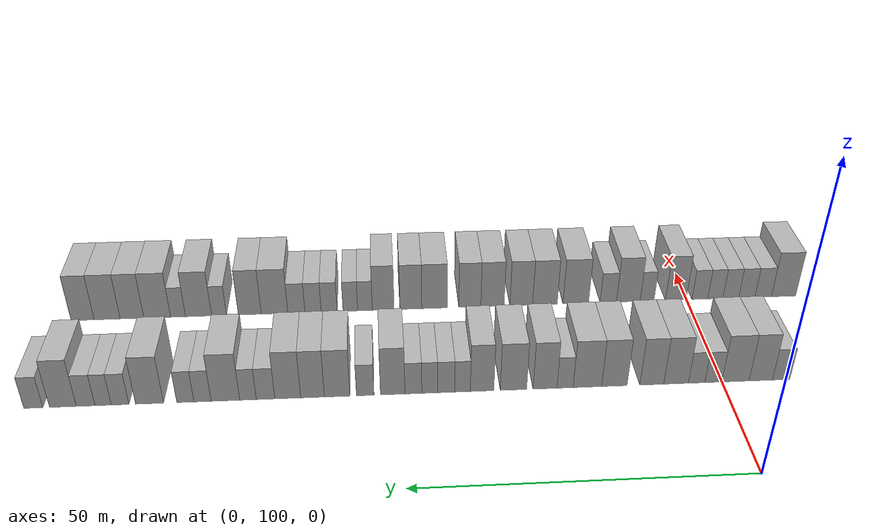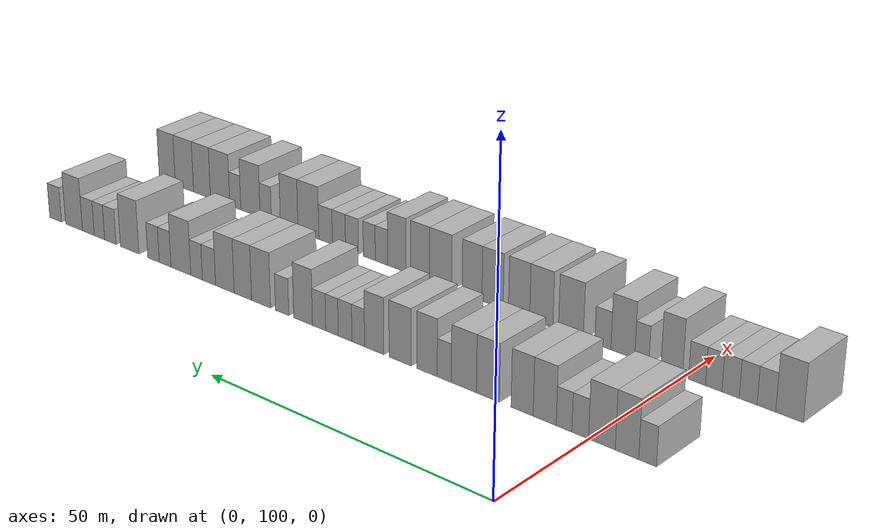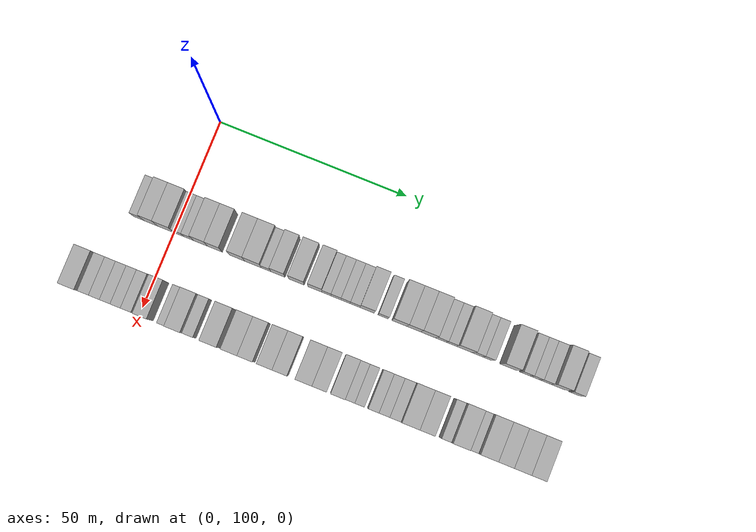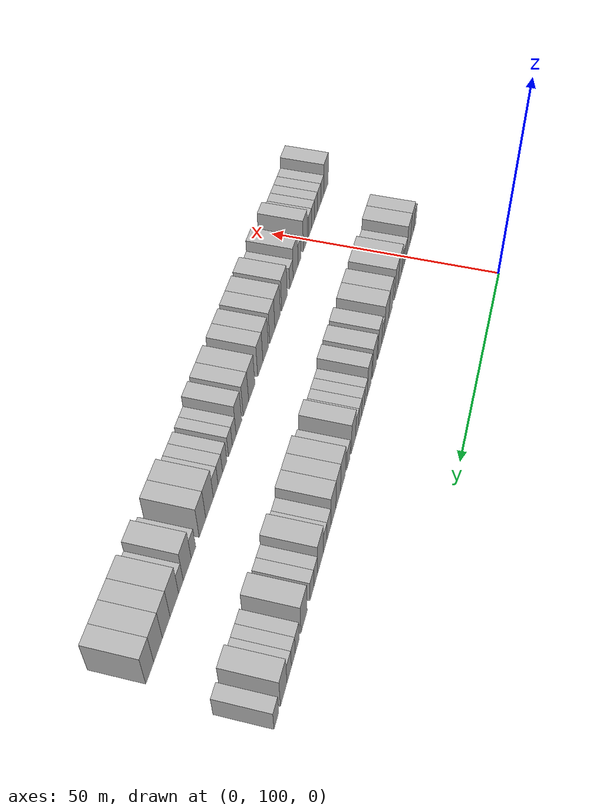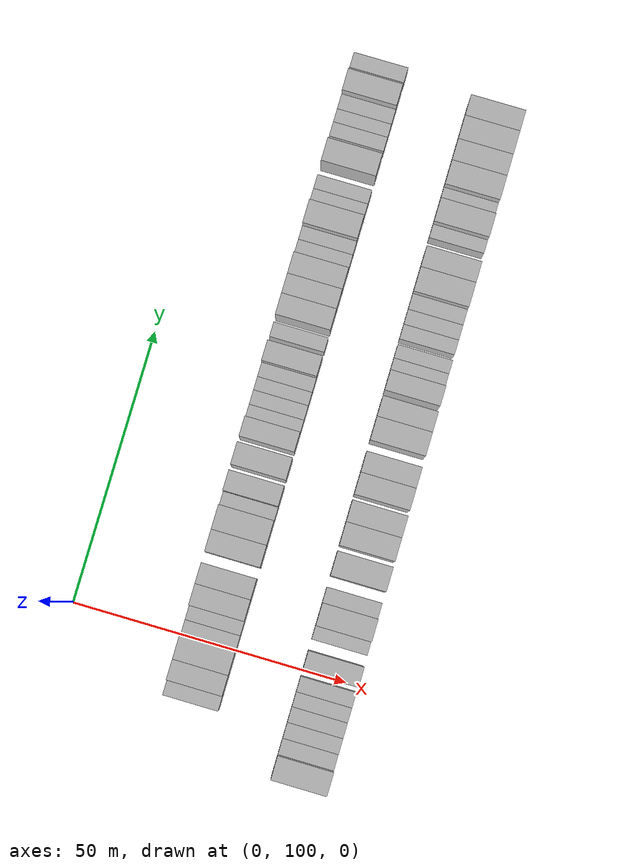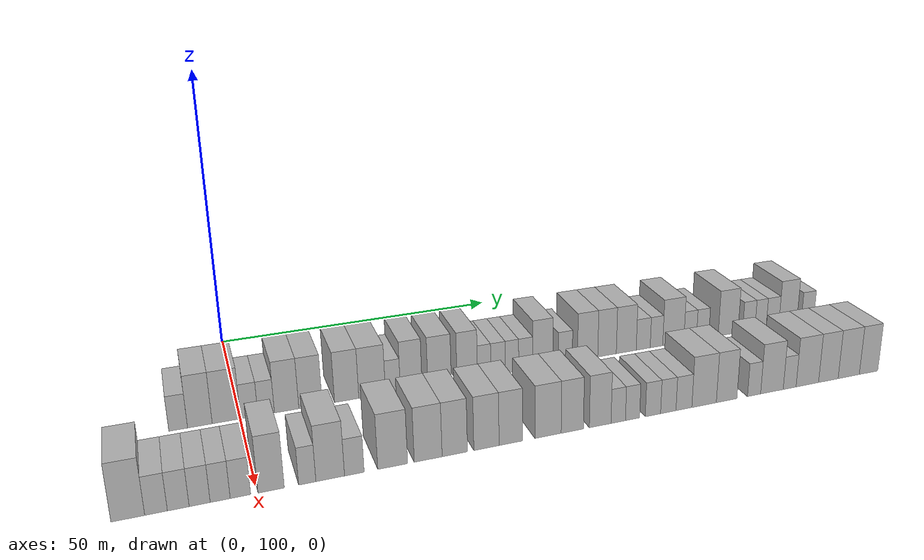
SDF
<sdf version="1.6">
 <world name="default">
  <model name="building_70">
   <static>1</static>
   <pose>25.0000 90.6528 0 0.000000 0.000000 0.000000</pose>
   <link name="link">
    <pose>0 0 3.00 0 0 0</pose>
    <collision name="collision"><geometry><box><size>10.0000 2.7820 6.0000</size></box></geometry></collision>
    <visual name="visual">
     <cast_shadows>0</cast_shadows>
     <geometry><box><size>10.0000 2.7820 6.0000</size></box></geometry>
     <material>
      <script>
       <uri>model://HANNAS_wall/materials/scripts</uri>
       <uri>model://HANNAS_wall/materials/textures</uri>
       <name>vrc/HANNAS_wall</name>
      </script>
     </material>
    </visual>
   </link>
  </model>
  <model name="building_71">
   <static>1</static>
   <pose>25.0000 93.8960 0 0.000000 0.000000 0.000000</pose>
   <link name="link">
    <pose>0 0 4.50 0 0 0</pose>
    <collision name="collision"><geometry><box><size>10.0000 3.7043 9.0000</size></box></geometry></collision>
    <visual name="visual">
     <cast_shadows>0</cast_shadows>
     <geometry><box><size>10.0000 3.7043 9.0000</size></box></geometry>
     <material>
      <script>
       <uri>model://HANNAS_wall/materials/scripts</uri>
       <uri>model://HANNAS_wall/materials/textures</uri>
       <name>vrc/HANNAS_wall</name>
      </script>
     </material>
    </visual>
   </link>
  </model>
  <model name="building_72">
   <static>1</static>
   <pose>25.0000 97.9015 0 0.000000 0.000000 0.000000</pose>
   <link name="link">
    <pose>0 0 4.50 0 0 0</pose>
    <collision name="collision"><geometry><box><size>10.0000 4.3069 9.0000</size></box></geometry></collision>
    <visual name="visual">
     <cast_shadows>0</cast_shadows>
     <geometry><box><size>10.0000 4.3069 9.0000</size></box></geometry>
     <material>
      <script>
       <uri>model://HANNAS_wall/materials/scripts</uri>
       <uri>model://HANNAS_wall/materials/textures</uri>
       <name>vrc/HANNAS_wall</name>
      </script>
     </material>
    </visual>
   </link>
  </model>
  <model name="building_73">
   <static>1</static>
   <pose>25.0000 101.4114 0 0.000000 0.000000 0.000000</pose>
   <link name="link">
    <pose>0 0 3.00 0 0 0</pose>
    <collision name="collision"><geometry><box><size>10.0000 2.7128 6.0000</size></box></geometry></collision>
    <visual name="visual">
     <cast_shadows>0</cast_shadows>
     <geometry><box><size>10.0000 2.7128 6.0000</size></box></geometry>
     <material>
      <script>
       <uri>model://HANNAS_wall/materials/scripts</uri>
       <uri>model://HANNAS_wall/materials/textures</uri>
       <name>vrc/HANNAS_wall</name>
      </script>
     </material>
    </visual>
   </link>
  </model>
  <model name="building_74">
   <static>1</static>
   <pose>25.0000 104.0581 0 0.000000 0.000000 0.000000</pose>
   <link name="link">
    <pose>0 0 3.00 0 0 0</pose>
    <collision name="collision"><geometry><box><size>10.0000 2.5806 6.0000</size></box></geometry></collision>
    <visual name="visual">
     <cast_shadows>0</cast_shadows>
     <geometry><box><size>10.0000 2.5806 6.0000</size></box></geometry>
     <material>
      <script>
       <uri>model://HANNAS_wall/materials/scripts</uri>
       <uri>model://HANNAS_wall/materials/textures</uri>
       <name>vrc/HANNAS_wall</name>
      </script>
     </material>
    </visual>
   </link>
  </model>
  <model name="building_75">
   <static>1</static>
   <pose>25.0000 107.2854 0 0.000000 0.000000 0.000000</pose>
   <link name="link">
    <pose>0 0 4.50 0 0 0</pose>
    <collision name="collision"><geometry><box><size>10.0000 3.8739 9.0000</size></box></geometry></collision>
    <visual name="visual">
     <cast_shadows>0</cast_shadows>
     <geometry><box><size>10.0000 3.8739 9.0000</size></box></geometry>
     <material>
      <script>
       <uri>model://HANNAS_wall/materials/scripts</uri>
       <uri>model://HANNAS_wall/materials/textures</uri>
       <name>vrc/HANNAS_wall</name>
      </script>
     </material>
    </visual>
   </link>
  </model>
  <model name="building_76">
   <static>1</static>
   <pose>25.0000 111.1015 0 0.000000 0.000000 0.000000</pose>
   <link name="link">
    <pose>0 0 4.50 0 0 0</pose>
    <collision name="collision"><geometry><box><size>10.0000 3.7584 9.0000</size></box></geometry></collision>
    <visual name="visual">
     <cast_shadows>0</cast_shadows>
     <geometry><box><size>10.0000 3.7584 9.0000</size></box></geometry>
     <material>
      <script>
       <uri>model://HANNAS_wall/materials/scripts</uri>
       <uri>model://HANNAS_wall/materials/textures</uri>
       <name>vrc/HANNAS_wall</name>
      </script>
     </material>
    </visual>
   </link>
  </model>
  <model name="building_77">
   <static>1</static>
   <pose>25.0000 116.9797 0 0.000000 0.000000 0.000000</pose>
   <link name="link">
    <pose>0 0 4.50 0 0 0</pose>
    <collision name="collision"><geometry><box><size>10.0000 3.9978 9.0000</size></box></geometry></collision>
    <visual name="visual">
     <cast_shadows>0</cast_shadows>
     <geometry><box><size>10.0000 3.9978 9.0000</size></box></geometry>
     <material>
      <script>
       <uri>model://HANNAS_wall/materials/scripts</uri>
       <uri>model://HANNAS_wall/materials/textures</uri>
       <name>vrc/HANNAS_wall</name>
      </script>
     </material>
    </visual>
   </link>
  </model>
  <model name="building_78">
   <static>1</static>
   <pose>25.0000 121.2037 0 0.000000 0.000000 0.000000</pose>
   <link name="link">
    <pose>0 0 4.50 0 0 0</pose>
    <collision name="collision"><geometry><box><size>10.0000 4.4503 9.0000</size></box></geometry></collision>
    <visual name="visual">
     <cast_shadows>0</cast_shadows>
     <geometry><box><size>10.0000 4.4503 9.0000</size></box></geometry>
     <material>
      <script>
       <uri>model://HANNAS_wall/materials/scripts</uri>
       <uri>model://HANNAS_wall/materials/textures</uri>
       <name>vrc/HANNAS_wall</name>
      </script>
     </material>
    </visual>
   </link>
  </model>
  <model name="building_79">
   <static>1</static>
   <pose>25.0000 124.6914 0 0.000000 0.000000 0.000000</pose>
   <link name="link">
    <pose>0 0 3.00 0 0 0</pose>
    <collision name="collision"><geometry><box><size>10.0000 2.5252 6.0000</size></box></geometry></collision>
    <visual name="visual">
     <cast_shadows>0</cast_shadows>
     <geometry><box><size>10.0000 2.5252 6.0000</size></box></geometry>
     <material>
      <script>
       <uri>model://HANNAS_wall/materials/scripts</uri>
       <uri>model://HANNAS_wall/materials/textures</uri>
       <name>vrc/HANNAS_wall</name>
      </script>
     </material>
    </visual>
   </link>
  </model>
  <model name="building_80">
   <static>1</static>
   <pose>25.0000 127.8165 0 0.000000 0.000000 0.000000</pose>
   <link name="link">
    <pose>0 0 4.50 0 0 0</pose>
    <collision name="collision"><geometry><box><size>10.0000 3.7249 9.0000</size></box></geometry></collision>
    <visual name="visual">
     <cast_shadows>0</cast_shadows>
     <geometry><box><size>10.0000 3.7249 9.0000</size></box></geometry>
     <material>
      <script>
       <uri>model://HANNAS_wall/materials/scripts</uri>
       <uri>model://HANNAS_wall/materials/textures</uri>
       <name>vrc/HANNAS_wall</name>
      </script>
     </material>
    </visual>
   </link>
  </model>
  <model name="building_81">
   <static>1</static>
   <pose>25.0000 132.7266 0 0.000000 0.000000 0.000000</pose>
   <link name="link">
    <pose>0 0 4.50 0 0 0</pose>
    <collision name="collision"><geometry><box><size>10.0000 4.0953 9.0000</size></box></geometry></collision>
    <visual name="visual">
     <cast_shadows>0</cast_shadows>
     <geometry><box><size>10.0000 4.0953 9.0000</size></box></geometry>
     <material>
      <script>
       <uri>model://HANNAS_wall/materials/scripts</uri>
       <uri>model://HANNAS_wall/materials/textures</uri>
       <name>vrc/HANNAS_wall</name>
      </script>
     </material>
    </visual>
   </link>
  </model>
  <model name="building_82">
   <static>1</static>
   <pose>25.0000 137.5954 0 0.000000 0.000000 0.000000</pose>
   <link name="link">
    <pose>0 0 4.50 0 0 0</pose>
    <collision name="collision"><geometry><box><size>10.0000 3.6423 9.0000</size></box></geometry></collision>
    <visual name="visual">
     <cast_shadows>0</cast_shadows>
     <geometry><box><size>10.0000 3.6423 9.0000</size></box></geometry>
     <material>
      <script>
       <uri>model://HANNAS_wall/materials/scripts</uri>
       <uri>model://HANNAS_wall/materials/textures</uri>
       <name>vrc/HANNAS_wall</name>
      </script>
     </material>
    </visual>
   </link>
  </model>
  <model name="building_83">
   <static>1</static>
   <pose>25.0000 140.6196 0 0.000000 0.000000 0.000000</pose>
   <link name="link">
    <pose>0 0 3.00 0 0 0</pose>
    <collision name="collision"><geometry><box><size>10.0000 2.4060 6.0000</size></box></geometry></collision>
    <visual name="visual">
     <cast_shadows>0</cast_shadows>
     <geometry><box><size>10.0000 2.4060 6.0000</size></box></geometry>
     <material>
      <script>
       <uri>model://HANNAS_wall/materials/scripts</uri>
       <uri>model://HANNAS_wall/materials/textures</uri>
       <name>vrc/HANNAS_wall</name>
      </script>
     </material>
    </visual>
   </link>
  </model>
  <model name="building_84">
   <static>1</static>
   <pose>25.0000 143.1422 0 0.000000 0.000000 0.000000</pose>
   <link name="link">
    <pose>0 0 3.00 0 0 0</pose>
    <collision name="collision"><geometry><box><size>10.0000 2.6392 6.0000</size></box></geometry></collision>
    <visual name="visual">
     <cast_shadows>0</cast_shadows>
     <geometry><box><size>10.0000 2.6392 6.0000</size></box></geometry>
     <material>
      <script>
       <uri>model://HANNAS_wall/materials/scripts</uri>
       <uri>model://HANNAS_wall/materials/textures</uri>
       <name>vrc/HANNAS_wall</name>
      </script>
     </material>
    </visual>
   </link>
  </model>
  <model name="building_85">
   <static>1</static>
   <pose>25.0000 145.6800 0 0.000000 0.000000 0.000000</pose>
   <link name="link">
    <pose>0 0 3.00 0 0 0</pose>
    <collision name="collision"><geometry><box><size>10.0000 2.4364 6.0000</size></box></geometry></collision>
    <visual name="visual">
     <cast_shadows>0</cast_shadows>
     <geometry><box><size>10.0000 2.4364 6.0000</size></box></geometry>
     <material>
      <script>
       <uri>model://HANNAS_wall/materials/scripts</uri>
       <uri>model://HANNAS_wall/materials/textures</uri>
       <name>vrc/HANNAS_wall</name>
      </script>
     </material>
    </visual>
   </link>
  </model>
  <model name="building_86">
   <static>1</static>
   <pose>25.0000 148.2035 0 0.000000 0.000000 0.000000</pose>
   <link name="link">
    <pose>0 0 3.00 0 0 0</pose>
    <collision name="collision"><geometry><box><size>10.0000 2.6107 6.0000</size></box></geometry></collision>
    <visual name="visual">
     <cast_shadows>0</cast_shadows>
     <geometry><box><size>10.0000 2.6107 6.0000</size></box></geometry>
     <material>
      <script>
       <uri>model://HANNAS_wall/materials/scripts</uri>
       <uri>model://HANNAS_wall/materials/textures</uri>
       <name>vrc/HANNAS_wall</name>
      </script>
     </material>
    </visual>
   </link>
  </model>
  <model name="building_87">
   <static>1</static>
   <pose>25.0000 151.3780 0 0.000000 0.000000 0.000000</pose>
   <link name="link">
    <pose>0 0 4.50 0 0 0</pose>
    <collision name="collision"><geometry><box><size>10.0000 3.7382 9.0000</size></box></geometry></collision>
    <visual name="visual">
     <cast_shadows>0</cast_shadows>
     <geometry><box><size>10.0000 3.7382 9.0000</size></box></geometry>
     <material>
      <script>
       <uri>model://HANNAS_wall/materials/scripts</uri>
       <uri>model://HANNAS_wall/materials/textures</uri>
       <name>vrc/HANNAS_wall</name>
      </script>
     </material>
    </visual>
   </link>
  </model>
  <model name="building_88">
   <static>1</static>
   <pose>25.0000 155.5901 0 0.000000 0.000000 0.000000</pose>
   <link name="link">
    <pose>0 0 3.00 0 0 0</pose>
    <collision name="collision"><geometry><box><size>10.0000 2.6861 6.0000</size></box></geometry></collision>
    <visual name="visual">
     <cast_shadows>0</cast_shadows>
     <geometry><box><size>10.0000 2.6861 6.0000</size></box></geometry>
     <material>
      <script>
       <uri>model://HANNAS_wall/materials/scripts</uri>
       <uri>model://HANNAS_wall/materials/textures</uri>
       <name>vrc/HANNAS_wall</name>
      </script>
     </material>
    </visual>
   </link>
  </model>
  <model name="building_89">
   <static>1</static>
   <pose>25.0000 159.8855 0 0.000000 0.000000 0.000000</pose>
   <link name="link">
    <pose>0 0 4.50 0 0 0</pose>
    <collision name="collision"><geometry><box><size>10.0000 3.9046 9.0000</size></box></geometry></collision>
    <visual name="visual">
     <cast_shadows>0</cast_shadows>
     <geometry><box><size>10.0000 3.9046 9.0000</size></box></geometry>
     <material>
      <script>
       <uri>model://HANNAS_wall/materials/scripts</uri>
       <uri>model://HANNAS_wall/materials/textures</uri>
       <name>vrc/HANNAS_wall</name>
      </script>
     </material>
    </visual>
   </link>
  </model>
  <model name="building_90">
   <static>1</static>
   <pose>25.0000 163.6475 0 0.000000 0.000000 0.000000</pose>
   <link name="link">
    <pose>0 0 4.50 0 0 0</pose>
    <collision name="collision"><geometry><box><size>10.0000 3.6193 9.0000</size></box></geometry></collision>
    <visual name="visual">
     <cast_shadows>0</cast_shadows>
     <geometry><box><size>10.0000 3.6193 9.0000</size></box></geometry>
     <material>
      <script>
       <uri>model://HANNAS_wall/materials/scripts</uri>
       <uri>model://HANNAS_wall/materials/textures</uri>
       <name>vrc/HANNAS_wall</name>
      </script>
     </material>
    </visual>
   </link>
  </model>
  <model name="building_91">
   <static>1</static>
   <pose>25.0000 167.4283 0 0.000000 0.000000 0.000000</pose>
   <link name="link">
    <pose>0 0 4.50 0 0 0</pose>
    <collision name="collision"><geometry><box><size>10.0000 3.9423 9.0000</size></box></geometry></collision>
    <visual name="visual">
     <cast_shadows>0</cast_shadows>
     <geometry><box><size>10.0000 3.9423 9.0000</size></box></geometry>
     <material>
      <script>
       <uri>model://HANNAS_wall/materials/scripts</uri>
       <uri>model://HANNAS_wall/materials/textures</uri>
       <name>vrc/HANNAS_wall</name>
      </script>
     </material>
    </visual>
   </link>
  </model>
  <model name="building_92">
   <static>1</static>
   <pose>25.0000 170.8053 0 0.000000 0.000000 0.000000</pose>
   <link name="link">
    <pose>0 0 3.00 0 0 0</pose>
    <collision name="collision"><geometry><box><size>10.0000 2.8118 6.0000</size></box></geometry></collision>
    <visual name="visual">
     <cast_shadows>0</cast_shadows>
     <geometry><box><size>10.0000 2.8118 6.0000</size></box></geometry>
     <material>
      <script>
       <uri>model://HANNAS_wall/materials/scripts</uri>
       <uri>model://HANNAS_wall/materials/textures</uri>
       <name>vrc/HANNAS_wall</name>
      </script>
     </material>
    </visual>
   </link>
  </model>
  <model name="building_93">
   <static>1</static>
   <pose>25.0000 173.4721 0 0.000000 0.000000 0.000000</pose>
   <link name="link">
    <pose>0 0 3.00 0 0 0</pose>
    <collision name="collision"><geometry><box><size>10.0000 2.5217 6.0000</size></box></geometry></collision>
    <visual name="visual">
     <cast_shadows>0</cast_shadows>
     <geometry><box><size>10.0000 2.5217 6.0000</size></box></geometry>
     <material>
      <script>
       <uri>model://HANNAS_wall/materials/scripts</uri>
       <uri>model://HANNAS_wall/materials/textures</uri>
       <name>vrc/HANNAS_wall</name>
      </script>
     </material>
    </visual>
   </link>
  </model>
  <model name="building_94">
   <static>1</static>
   <pose>25.0000 176.8961 0 0.000000 0.000000 0.000000</pose>
   <link name="link">
    <pose>0 0 4.50 0 0 0</pose>
    <collision name="collision"><geometry><box><size>10.0000 4.3265 9.0000</size></box></geometry></collision>
    <visual name="visual">
     <cast_shadows>0</cast_shadows>
     <geometry><box><size>10.0000 4.3265 9.0000</size></box></geometry>
     <material>
      <script>
       <uri>model://HANNAS_wall/materials/scripts</uri>
       <uri>model://HANNAS_wall/materials/textures</uri>
       <name>vrc/HANNAS_wall</name>
      </script>
     </material>
    </visual>
   </link>
  </model>
  <model name="building_95">
   <static>1</static>
   <pose>25.0000 180.3602 0 0.000000 0.000000 0.000000</pose>
   <link name="link">
    <pose>0 0 3.00 0 0 0</pose>
    <collision name="collision"><geometry><box><size>10.0000 2.6016 6.0000</size></box></geometry></collision>
    <visual name="visual">
     <cast_shadows>0</cast_shadows>
     <geometry><box><size>10.0000 2.6016 6.0000</size></box></geometry>
     <material>
      <script>
       <uri>model://HANNAS_wall/materials/scripts</uri>
       <uri>model://HANNAS_wall/materials/textures</uri>
       <name>vrc/HANNAS_wall</name>
      </script>
     </material>
    </visual>
   </link>
  </model>
  <model name="building_96">
   <static>1</static>
   <pose>25.0000 182.9474 0 0.000000 0.000000 0.000000</pose>
   <link name="link">
    <pose>0 0 3.00 0 0 0</pose>
    <collision name="collision"><geometry><box><size>10.0000 2.5729 6.0000</size></box></geometry></collision>
    <visual name="visual">
     <cast_shadows>0</cast_shadows>
     <geometry><box><size>10.0000 2.5729 6.0000</size></box></geometry>
     <material>
      <script>
       <uri>model://HANNAS_wall/materials/scripts</uri>
       <uri>model://HANNAS_wall/materials/textures</uri>
       <name>vrc/HANNAS_wall</name>
      </script>
     </material>
    </visual>
   </link>
  </model>
  <model name="building_97">
   <static>1</static>
   <pose>25.0000 188.3378 0 0.000000 0.000000 0.000000</pose>
   <link name="link">
    <pose>0 0 4.50 0 0 0</pose>
    <collision name="collision"><geometry><box><size>10.0000 4.2080 9.0000</size></box></geometry></collision>
    <visual name="visual">
     <cast_shadows>0</cast_shadows>
     <geometry><box><size>10.0000 4.2080 9.0000</size></box></geometry>
     <material>
      <script>
       <uri>model://HANNAS_wall/materials/scripts</uri>
       <uri>model://HANNAS_wall/materials/textures</uri>
       <name>vrc/HANNAS_wall</name>
      </script>
     </material>
    </visual>
   </link>
  </model>
  <model name="building_98">
   <static>1</static>
   <pose>25.0000 192.7687 0 0.000000 0.000000 0.000000</pose>
   <link name="link">
    <pose>0 0 3.00 0 0 0</pose>
    <collision name="collision"><geometry><box><size>10.0000 2.6538 6.0000</size></box></geometry></collision>
    <visual name="visual">
     <cast_shadows>0</cast_shadows>
     <geometry><box><size>10.0000 2.6538 6.0000</size></box></geometry>
     <material>
      <script>
       <uri>model://HANNAS_wall/materials/scripts</uri>
       <uri>model://HANNAS_wall/materials/textures</uri>
       <name>vrc/HANNAS_wall</name>
      </script>
     </material>
    </visual>
   </link>
  </model>
  <model name="building_99">
   <static>1</static>
   <pose>25.0000 195.3178 0 0.000000 0.000000 0.000000</pose>
   <link name="link">
    <pose>0 0 3.00 0 0 0</pose>
    <collision name="collision"><geometry><box><size>10.0000 2.4444 6.0000</size></box></geometry></collision>
    <visual name="visual">
     <cast_shadows>0</cast_shadows>
     <geometry><box><size>10.0000 2.4444 6.0000</size></box></geometry>
     <material>
      <script>
       <uri>model://HANNAS_wall/materials/scripts</uri>
       <uri>model://HANNAS_wall/materials/textures</uri>
       <name>vrc/HANNAS_wall</name>
      </script>
     </material>
    </visual>
   </link>
  </model>
  <model name="building_100">
   <static>1</static>
   <pose>25.0000 197.9291 0 0.000000 0.000000 0.000000</pose>
   <link name="link">
    <pose>0 0 3.00 0 0 0</pose>
    <collision name="collision"><geometry><box><size>10.0000 2.7781 6.0000</size></box></geometry></collision>
    <visual name="visual">
     <cast_shadows>0</cast_shadows>
     <geometry><box><size>10.0000 2.7781 6.0000</size></box></geometry>
     <material>
      <script>
       <uri>model://HANNAS_wall/materials/scripts</uri>
       <uri>model://HANNAS_wall/materials/textures</uri>
       <name>vrc/HANNAS_wall</name>
      </script>
     </material>
    </visual>
   </link>
  </model>
  <model name="building_101">
   <static>1</static>
   <pose>25.0000 201.3187 0 0.000000 0.000000 0.000000</pose>
   <link name="link">
    <pose>0 0 4.50 0 0 0</pose>
    <collision name="collision"><geometry><box><size>10.0000 4.0010 9.0000</size></box></geometry></collision>
    <visual name="visual">
     <cast_shadows>0</cast_shadows>
     <geometry><box><size>10.0000 4.0010 9.0000</size></box></geometry>
     <material>
      <script>
       <uri>model://HANNAS_wall/materials/scripts</uri>
       <uri>model://HANNAS_wall/materials/textures</uri>
       <name>vrc/HANNAS_wall</name>
      </script>
     </material>
    </visual>
   </link>
  </model>
  <model name="building_102">
   <static>1</static>
   <pose>25.0000 205.7328 0 0.000000 0.000000 0.000000</pose>
   <link name="link">
    <pose>0 0 3.00 0 0 0</pose>
    <collision name="collision"><geometry><box><size>10.0000 2.8272 6.0000</size></box></geometry></collision>
    <visual name="visual">
     <cast_shadows>0</cast_shadows>
     <geometry><box><size>10.0000 2.8272 6.0000</size></box></geometry>
     <material>
      <script>
       <uri>model://HANNAS_wall/materials/scripts</uri>
       <uri>model://HANNAS_wall/materials/textures</uri>
       <name>vrc/HANNAS_wall</name>
      </script>
     </material>
    </visual>
   </link>
  </model>
  <model name="building_164">
   <static>1</static>
   <pose>47.0000 82.9723 0 0.000000 0.000000 0.000000</pose>
   <link name="link">
    <pose>0 0 4.50 0 0 0</pose>
    <collision name="collision"><geometry><box><size>10.0000 4.2848 9.0000</size></box></geometry></collision>
    <visual name="visual">
     <cast_shadows>0</cast_shadows>
     <geometry><box><size>10.0000 4.2848 9.0000</size></box></geometry>
     <material>
      <script>
       <uri>model://HANNAS_wall/materials/scripts</uri>
       <uri>model://HANNAS_wall/materials/textures</uri>
       <name>vrc/HANNAS_wall</name>
      </script>
     </material>
    </visual>
   </link>
  </model>
  <model name="building_165">
   <static>1</static>
   <pose>47.0000 86.5714 0 0.000000 0.000000 0.000000</pose>
   <link name="link">
    <pose>0 0 3.00 0 0 0</pose>
    <collision name="collision"><geometry><box><size>10.0000 2.9133 6.0000</size></box></geometry></collision>
    <visual name="visual">
     <cast_shadows>0</cast_shadows>
     <geometry><box><size>10.0000 2.9133 6.0000</size></box></geometry>
     <material>
      <script>
       <uri>model://HANNAS_wall/materials/scripts</uri>
       <uri>model://HANNAS_wall/materials/textures</uri>
       <name>vrc/HANNAS_wall</name>
      </script>
     </material>
    </visual>
   </link>
  </model>
  <model name="building_166">
   <static>1</static>
   <pose>47.0000 89.4479 0 0.000000 0.000000 0.000000</pose>
   <link name="link">
    <pose>0 0 3.00 0 0 0</pose>
    <collision name="collision"><geometry><box><size>10.0000 2.8397 6.0000</size></box></geometry></collision>
    <visual name="visual">
     <cast_shadows>0</cast_shadows>
     <geometry><box><size>10.0000 2.8397 6.0000</size></box></geometry>
     <material>
      <script>
       <uri>model://HANNAS_wall/materials/scripts</uri>
       <uri>model://HANNAS_wall/materials/textures</uri>
       <name>vrc/HANNAS_wall</name>
      </script>
     </material>
    </visual>
   </link>
  </model>
  <model name="building_167">
   <static>1</static>
   <pose>47.0000 92.2582 0 0.000000 0.000000 0.000000</pose>
   <link name="link">
    <pose>0 0 3.00 0 0 0</pose>
    <collision name="collision"><geometry><box><size>10.0000 2.7810 6.0000</size></box></geometry></collision>
    <visual name="visual">
     <cast_shadows>0</cast_shadows>
     <geometry><box><size>10.0000 2.7810 6.0000</size></box></geometry>
     <material>
      <script>
       <uri>model://HANNAS_wall/materials/scripts</uri>
       <uri>model://HANNAS_wall/materials/textures</uri>
       <name>vrc/HANNAS_wall</name>
      </script>
     </material>
    </visual>
   </link>
  </model>
  <model name="building_168">
   <static>1</static>
   <pose>47.0000 94.9837 0 0.000000 0.000000 0.000000</pose>
   <link name="link">
    <pose>0 0 3.00 0 0 0</pose>
    <collision name="collision"><geometry><box><size>10.0000 2.6699 6.0000</size></box></geometry></collision>
    <visual name="visual">
     <cast_shadows>0</cast_shadows>
     <geometry><box><size>10.0000 2.6699 6.0000</size></box></geometry>
     <material>
      <script>
       <uri>model://HANNAS_wall/materials/scripts</uri>
       <uri>model://HANNAS_wall/materials/textures</uri>
       <name>vrc/HANNAS_wall</name>
      </script>
     </material>
    </visual>
   </link>
  </model>
  <model name="building_169">
   <static>1</static>
   <pose>47.0000 97.7050 0 0.000000 0.000000 0.000000</pose>
   <link name="link">
    <pose>0 0 3.00 0 0 0</pose>
    <collision name="collision"><geometry><box><size>10.0000 2.7727 6.0000</size></box></geometry></collision>
    <visual name="visual">
     <cast_shadows>0</cast_shadows>
     <geometry><box><size>10.0000 2.7727 6.0000</size></box></geometry>
     <material>
      <script>
       <uri>model://HANNAS_wall/materials/scripts</uri>
       <uri>model://HANNAS_wall/materials/textures</uri>
       <name>vrc/HANNAS_wall</name>
      </script>
     </material>
    </visual>
   </link>
  </model>
  <model name="building_170">
   <static>1</static>
   <pose>47.0000 101.9086 0 0.000000 0.000000 0.000000</pose>
   <link name="link">
    <pose>0 0 4.50 0 0 0</pose>
    <collision name="collision"><geometry><box><size>10.0000 3.6345 9.0000</size></box></geometry></collision>
    <visual name="visual">
     <cast_shadows>0</cast_shadows>
     <geometry><box><size>10.0000 3.6345 9.0000</size></box></geometry>
     <material>
      <script>
       <uri>model://HANNAS_wall/materials/scripts</uri>
       <uri>model://HANNAS_wall/materials/textures</uri>
       <name>vrc/HANNAS_wall</name>
      </script>
     </material>
    </visual>
   </link>
  </model>
  <model name="building_171">
   <static>1</static>
   <pose>47.0000 106.9428 0 0.000000 0.000000 0.000000</pose>
   <link name="link">
    <pose>0 0 3.00 0 0 0</pose>
    <collision name="collision"><geometry><box><size>10.0000 2.4339 6.0000</size></box></geometry></collision>
    <visual name="visual">
     <cast_shadows>0</cast_shadows>
     <geometry><box><size>10.0000 2.4339 6.0000</size></box></geometry>
     <material>
      <script>
       <uri>model://HANNAS_wall/materials/scripts</uri>
       <uri>model://HANNAS_wall/materials/textures</uri>
       <name>vrc/HANNAS_wall</name>
      </script>
     </material>
    </visual>
   </link>
  </model>
  <model name="building_172">
   <static>1</static>
   <pose>47.0000 110.2116 0 0.000000 0.000000 0.000000</pose>
   <link name="link">
    <pose>0 0 4.50 0 0 0</pose>
    <collision name="collision"><geometry><box><size>10.0000 4.1038 9.0000</size></box></geometry></collision>
    <visual name="visual">
     <cast_shadows>0</cast_shadows>
     <geometry><box><size>10.0000 4.1038 9.0000</size></box></geometry>
     <material>
      <script>
       <uri>model://HANNAS_wall/materials/scripts</uri>
       <uri>model://HANNAS_wall/materials/textures</uri>
       <name>vrc/HANNAS_wall</name>
      </script>
     </material>
    </visual>
   </link>
  </model>
  <model name="building_173">
   <static>1</static>
   <pose>47.0000 113.6878 0 0.000000 0.000000 0.000000</pose>
   <link name="link">
    <pose>0 0 3.00 0 0 0</pose>
    <collision name="collision"><geometry><box><size>10.0000 2.8486 6.0000</size></box></geometry></collision>
    <visual name="visual">
     <cast_shadows>0</cast_shadows>
     <geometry><box><size>10.0000 2.8486 6.0000</size></box></geometry>
     <material>
      <script>
       <uri>model://HANNAS_wall/materials/scripts</uri>
       <uri>model://HANNAS_wall/materials/textures</uri>
       <name>vrc/HANNAS_wall</name>
      </script>
     </material>
    </visual>
   </link>
  </model>
  <model name="building_174">
   <static>1</static>
   <pose>47.0000 119.3352 0 0.000000 0.000000 0.000000</pose>
   <link name="link">
    <pose>0 0 4.50 0 0 0</pose>
    <collision name="collision"><geometry><box><size>10.0000 4.4462 9.0000</size></box></geometry></collision>
    <visual name="visual">
     <cast_shadows>0</cast_shadows>
     <geometry><box><size>10.0000 4.4462 9.0000</size></box></geometry>
     <material>
      <script>
       <uri>model://HANNAS_wall/materials/scripts</uri>
       <uri>model://HANNAS_wall/materials/textures</uri>
       <name>vrc/HANNAS_wall</name>
      </script>
     </material>
    </visual>
   </link>
  </model>
  <model name="building_175">
   <static>1</static>
   <pose>47.0000 124.6821 0 0.000000 0.000000 0.000000</pose>
   <link name="link">
    <pose>0 0 4.50 0 0 0</pose>
    <collision name="collision"><geometry><box><size>10.0000 4.2475 9.0000</size></box></geometry></collision>
    <visual name="visual">
     <cast_shadows>0</cast_shadows>
     <geometry><box><size>10.0000 4.2475 9.0000</size></box></geometry>
     <material>
      <script>
       <uri>model://HANNAS_wall/materials/scripts</uri>
       <uri>model://HANNAS_wall/materials/textures</uri>
       <name>vrc/HANNAS_wall</name>
      </script>
     </material>
    </visual>
   </link>
  </model>
  <model name="building_176">
   <static>1</static>
   <pose>47.0000 128.7705 0 0.000000 0.000000 0.000000</pose>
   <link name="link">
    <pose>0 0 4.50 0 0 0</pose>
    <collision name="collision"><geometry><box><size>10.0000 3.9293 9.0000</size></box></geometry></collision>
    <visual name="visual">
     <cast_shadows>0</cast_shadows>
     <geometry><box><size>10.0000 3.9293 9.0000</size></box></geometry>
     <material>
      <script>
       <uri>model://HANNAS_wall/materials/scripts</uri>
       <uri>model://HANNAS_wall/materials/textures</uri>
       <name>vrc/HANNAS_wall</name>
      </script>
     </material>
    </visual>
   </link>
  </model>
  <model name="building_177">
   <static>1</static>
   <pose>47.0000 133.7329 0 0.000000 0.000000 0.000000</pose>
   <link name="link">
    <pose>0 0 4.50 0 0 0</pose>
    <collision name="collision"><geometry><box><size>10.0000 3.9953 9.0000</size></box></geometry></collision>
    <visual name="visual">
     <cast_shadows>0</cast_shadows>
     <geometry><box><size>10.0000 3.9953 9.0000</size></box></geometry>
     <material>
      <script>
       <uri>model://HANNAS_wall/materials/scripts</uri>
       <uri>model://HANNAS_wall/materials/textures</uri>
       <name>vrc/HANNAS_wall</name>
      </script>
     </material>
    </visual>
   </link>
  </model>
  <model name="building_178">
   <static>1</static>
   <pose>47.0000 137.6249 0 0.000000 0.000000 0.000000</pose>
   <link name="link">
    <pose>0 0 4.50 0 0 0</pose>
    <collision name="collision"><geometry><box><size>10.0000 3.7888 9.0000</size></box></geometry></collision>
    <visual name="visual">
     <cast_shadows>0</cast_shadows>
     <geometry><box><size>10.0000 3.7888 9.0000</size></box></geometry>
     <material>
      <script>
       <uri>model://HANNAS_wall/materials/scripts</uri>
       <uri>model://HANNAS_wall/materials/textures</uri>
       <name>vrc/HANNAS_wall</name>
      </script>
     </material>
    </visual>
   </link>
  </model>
  <model name="building_179">
   <static>1</static>
   <pose>47.0000 143.6872 0 0.000000 0.000000 0.000000</pose>
   <link name="link">
    <pose>0 0 4.50 0 0 0</pose>
    <collision name="collision"><geometry><box><size>10.0000 4.3357 9.0000</size></box></geometry></collision>
    <visual name="visual">
     <cast_shadows>0</cast_shadows>
     <geometry><box><size>10.0000 4.3357 9.0000</size></box></geometry>
     <material>
      <script>
       <uri>model://HANNAS_wall/materials/scripts</uri>
       <uri>model://HANNAS_wall/materials/textures</uri>
       <name>vrc/HANNAS_wall</name>
      </script>
     </material>
    </visual>
   </link>
  </model>
  <model name="building_180">
   <static>1</static>
   <pose>47.0000 147.7195 0 0.000000 0.000000 0.000000</pose>
   <link name="link">
    <pose>0 0 4.50 0 0 0</pose>
    <collision name="collision"><geometry><box><size>10.0000 3.7289 9.0000</size></box></geometry></collision>
    <visual name="visual">
     <cast_shadows>0</cast_shadows>
     <geometry><box><size>10.0000 3.7289 9.0000</size></box></geometry>
     <material>
      <script>
       <uri>model://HANNAS_wall/materials/scripts</uri>
       <uri>model://HANNAS_wall/materials/textures</uri>
       <name>vrc/HANNAS_wall</name>
      </script>
     </material>
    </visual>
   </link>
  </model>
  <model name="building_181">
   <static>1</static>
   <pose>47.0000 152.4366 0 0.000000 0.000000 0.000000</pose>
   <link name="link">
    <pose>0 0 4.50 0 0 0</pose>
    <collision name="collision"><geometry><box><size>10.0000 3.7052 9.0000</size></box></geometry></collision>
    <visual name="visual">
     <cast_shadows>0</cast_shadows>
     <geometry><box><size>10.0000 3.7052 9.0000</size></box></geometry>
     <material>
      <script>
       <uri>model://HANNAS_wall/materials/scripts</uri>
       <uri>model://HANNAS_wall/materials/textures</uri>
       <name>vrc/HANNAS_wall</name>
      </script>
     </material>
    </visual>
   </link>
  </model>
  <model name="building_182">
   <static>1</static>
   <pose>47.0000 155.5371 0 0.000000 0.000000 0.000000</pose>
   <link name="link">
    <pose>0 0 3.00 0 0 0</pose>
    <collision name="collision"><geometry><box><size>10.0000 2.4958 6.0000</size></box></geometry></collision>
    <visual name="visual">
     <cast_shadows>0</cast_shadows>
     <geometry><box><size>10.0000 2.4958 6.0000</size></box></geometry>
     <material>
      <script>
       <uri>model://HANNAS_wall/materials/scripts</uri>
       <uri>model://HANNAS_wall/materials/textures</uri>
       <name>vrc/HANNAS_wall</name>
      </script>
     </material>
    </visual>
   </link>
  </model>
  <model name="building_183">
   <static>1</static>
   <pose>47.0000 158.0270 0 0.000000 0.000000 0.000000</pose>
   <link name="link">
    <pose>0 0 3.00 0 0 0</pose>
    <collision name="collision"><geometry><box><size>10.0000 2.4841 6.0000</size></box></geometry></collision>
    <visual name="visual">
     <cast_shadows>0</cast_shadows>
     <geometry><box><size>10.0000 2.4841 6.0000</size></box></geometry>
     <material>
      <script>
       <uri>model://HANNAS_wall/materials/scripts</uri>
       <uri>model://HANNAS_wall/materials/textures</uri>
       <name>vrc/HANNAS_wall</name>
      </script>
     </material>
    </visual>
   </link>
  </model>
  <model name="building_184">
   <static>1</static>
   <pose>47.0000 161.6277 0 0.000000 0.000000 0.000000</pose>
   <link name="link">
    <pose>0 0 3.00 0 0 0</pose>
    <collision name="collision"><geometry><box><size>10.0000 2.7172 6.0000</size></box></geometry></collision>
    <visual name="visual">
     <cast_shadows>0</cast_shadows>
     <geometry><box><size>10.0000 2.7172 6.0000</size></box></geometry>
     <material>
      <script>
       <uri>model://HANNAS_wall/materials/scripts</uri>
       <uri>model://HANNAS_wall/materials/textures</uri>
       <name>vrc/HANNAS_wall</name>
      </script>
     </material>
    </visual>
   </link>
  </model>
  <model name="building_185">
   <static>1</static>
   <pose>47.0000 164.3644 0 0.000000 0.000000 0.000000</pose>
   <link name="link">
    <pose>0 0 3.00 0 0 0</pose>
    <collision name="collision"><geometry><box><size>10.0000 2.7563 6.0000</size></box></geometry></collision>
    <visual name="visual">
     <cast_shadows>0</cast_shadows>
     <geometry><box><size>10.0000 2.7563 6.0000</size></box></geometry>
     <material>
      <script>
       <uri>model://HANNAS_wall/materials/scripts</uri>
       <uri>model://HANNAS_wall/materials/textures</uri>
       <name>vrc/HANNAS_wall</name>
      </script>
     </material>
    </visual>
   </link>
  </model>
  <model name="building_186">
   <static>1</static>
   <pose>47.0000 167.1853 0 0.000000 0.000000 0.000000</pose>
   <link name="link">
    <pose>0 0 3.00 0 0 0</pose>
    <collision name="collision"><geometry><box><size>10.0000 2.8855 6.0000</size></box></geometry></collision>
    <visual name="visual">
     <cast_shadows>0</cast_shadows>
     <geometry><box><size>10.0000 2.8855 6.0000</size></box></geometry>
     <material>
      <script>
       <uri>model://HANNAS_wall/materials/scripts</uri>
       <uri>model://HANNAS_wall/materials/textures</uri>
       <name>vrc/HANNAS_wall</name>
      </script>
     </material>
    </visual>
   </link>
  </model>
  <model name="building_187">
   <static>1</static>
   <pose>47.0000 170.8773 0 0.000000 0.000000 0.000000</pose>
   <link name="link">
    <pose>0 0 4.50 0 0 0</pose>
    <collision name="collision"><geometry><box><size>10.0000 4.4985 9.0000</size></box></geometry></collision>
    <visual name="visual">
     <cast_shadows>0</cast_shadows>
     <geometry><box><size>10.0000 4.4985 9.0000</size></box></geometry>
     <material>
      <script>
       <uri>model://HANNAS_wall/materials/scripts</uri>
       <uri>model://HANNAS_wall/materials/textures</uri>
       <name>vrc/HANNAS_wall</name>
      </script>
     </material>
    </visual>
   </link>
  </model>
  <model name="building_188">
   <static>1</static>
   <pose>47.0000 175.0521 0 0.000000 0.000000 0.000000</pose>
   <link name="link">
    <pose>0 0 4.50 0 0 0</pose>
    <collision name="collision"><geometry><box><size>10.0000 3.8510 9.0000</size></box></geometry></collision>
    <visual name="visual">
     <cast_shadows>0</cast_shadows>
     <geometry><box><size>10.0000 3.8510 9.0000</size></box></geometry>
     <material>
      <script>
       <uri>model://HANNAS_wall/materials/scripts</uri>
       <uri>model://HANNAS_wall/materials/textures</uri>
       <name>vrc/HANNAS_wall</name>
      </script>
     </material>
    </visual>
   </link>
  </model>
  <model name="building_189">
   <static>1</static>
   <pose>47.0000 180.2288 0 0.000000 0.000000 0.000000</pose>
   <link name="link">
    <pose>0 0 3.00 0 0 0</pose>
    <collision name="collision"><geometry><box><size>10.0000 2.5024 6.0000</size></box></geometry></collision>
    <visual name="visual">
     <cast_shadows>0</cast_shadows>
     <geometry><box><size>10.0000 2.5024 6.0000</size></box></geometry>
     <material>
      <script>
       <uri>model://HANNAS_wall/materials/scripts</uri>
       <uri>model://HANNAS_wall/materials/textures</uri>
       <name>vrc/HANNAS_wall</name>
      </script>
     </material>
    </visual>
   </link>
  </model>
  <model name="building_190">
   <static>1</static>
   <pose>47.0000 183.6623 0 0.000000 0.000000 0.000000</pose>
   <link name="link">
    <pose>0 0 4.50 0 0 0</pose>
    <collision name="collision"><geometry><box><size>10.0000 4.3646 9.0000</size></box></geometry></collision>
    <visual name="visual">
     <cast_shadows>0</cast_shadows>
     <geometry><box><size>10.0000 4.3646 9.0000</size></box></geometry>
     <material>
      <script>
       <uri>model://HANNAS_wall/materials/scripts</uri>
       <uri>model://HANNAS_wall/materials/textures</uri>
       <name>vrc/HANNAS_wall</name>
      </script>
     </material>
    </visual>
   </link>
  </model>
  <model name="building_191">
   <static>1</static>
   <pose>47.0000 187.1025 0 0.000000 0.000000 0.000000</pose>
   <link name="link">
    <pose>0 0 3.00 0 0 0</pose>
    <collision name="collision"><geometry><box><size>10.0000 2.5157 6.0000</size></box></geometry></collision>
    <visual name="visual">
     <cast_shadows>0</cast_shadows>
     <geometry><box><size>10.0000 2.5157 6.0000</size></box></geometry>
     <material>
      <script>
       <uri>model://HANNAS_wall/materials/scripts</uri>
       <uri>model://HANNAS_wall/materials/textures</uri>
       <name>vrc/HANNAS_wall</name>
      </script>
     </material>
    </visual>
   </link>
  </model>
  <model name="building_192">
   <static>1</static>
   <pose>47.0000 190.5906 0 0.000000 0.000000 0.000000</pose>
   <link name="link">
    <pose>0 0 4.50 0 0 0</pose>
    <collision name="collision"><geometry><box><size>10.0000 4.4605 9.0000</size></box></geometry></collision>
    <visual name="visual">
     <cast_shadows>0</cast_shadows>
     <geometry><box><size>10.0000 4.4605 9.0000</size></box></geometry>
     <material>
      <script>
       <uri>model://HANNAS_wall/materials/scripts</uri>
       <uri>model://HANNAS_wall/materials/textures</uri>
       <name>vrc/HANNAS_wall</name>
      </script>
     </material>
    </visual>
   </link>
  </model>
  <model name="building_193">
   <static>1</static>
   <pose>47.0000 194.7928 0 0.000000 0.000000 0.000000</pose>
   <link name="link">
    <pose>0 0 4.50 0 0 0</pose>
    <collision name="collision"><geometry><box><size>10.0000 3.9440 9.0000</size></box></geometry></collision>
    <visual name="visual">
     <cast_shadows>0</cast_shadows>
     <geometry><box><size>10.0000 3.9440 9.0000</size></box></geometry>
     <material>
      <script>
       <uri>model://HANNAS_wall/materials/scripts</uri>
       <uri>model://HANNAS_wall/materials/textures</uri>
       <name>vrc/HANNAS_wall</name>
      </script>
     </material>
    </visual>
   </link>
  </model>
  <model name="building_194">
   <static>1</static>
   <pose>47.0000 198.9309 0 0.000000 0.000000 0.000000</pose>
   <link name="link">
    <pose>0 0 4.50 0 0 0</pose>
    <collision name="collision"><geometry><box><size>10.0000 4.3321 9.0000</size></box></geometry></collision>
    <visual name="visual">
     <cast_shadows>0</cast_shadows>
     <geometry><box><size>10.0000 4.3321 9.0000</size></box></geometry>
     <material>
      <script>
       <uri>model://HANNAS_wall/materials/scripts</uri>
       <uri>model://HANNAS_wall/materials/textures</uri>
       <name>vrc/HANNAS_wall</name>
      </script>
     </material>
    </visual>
   </link>
  </model>
  <model name="building_195">
   <static>1</static>
   <pose>47.0000 203.0098 0 0.000000 0.000000 0.000000</pose>
   <link name="link">
    <pose>0 0 4.50 0 0 0</pose>
    <collision name="collision"><geometry><box><size>10.0000 3.8258 9.0000</size></box></geometry></collision>
    <visual name="visual">
     <cast_shadows>0</cast_shadows>
     <geometry><box><size>10.0000 3.8258 9.0000</size></box></geometry>
     <material>
      <script>
       <uri>model://HANNAS_wall/materials/scripts</uri>
       <uri>model://HANNAS_wall/materials/textures</uri>
       <name>vrc/HANNAS_wall</name>
      </script>
     </material>
    </visual>
   </link>
  </model>
 </world>
</sdf>
